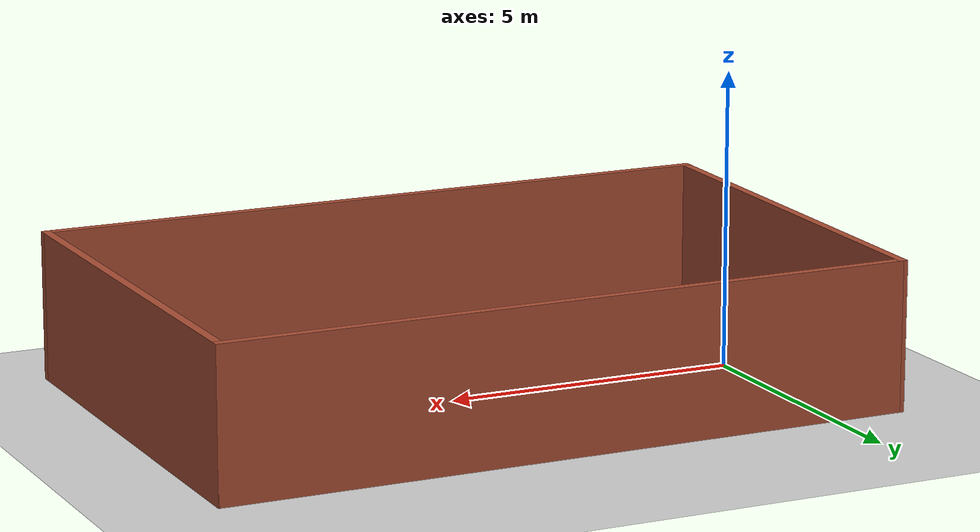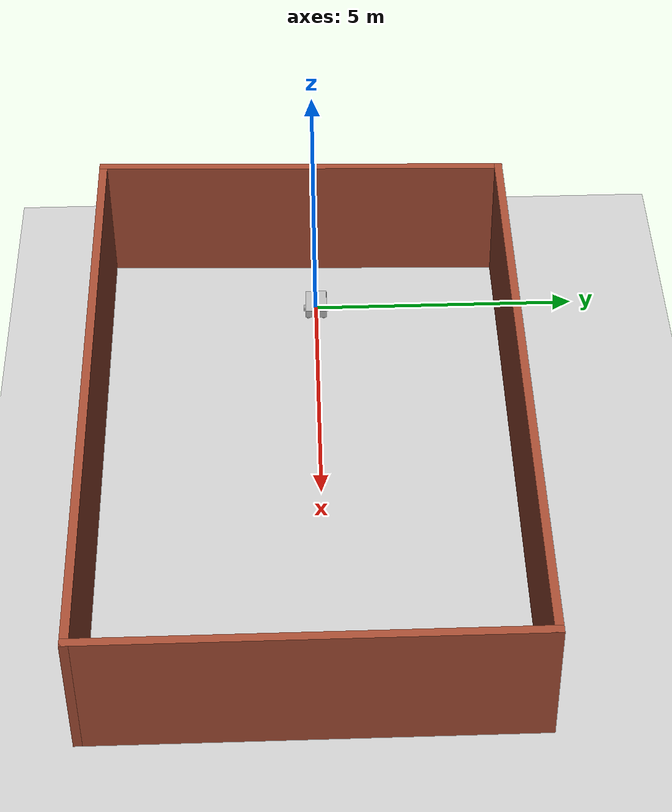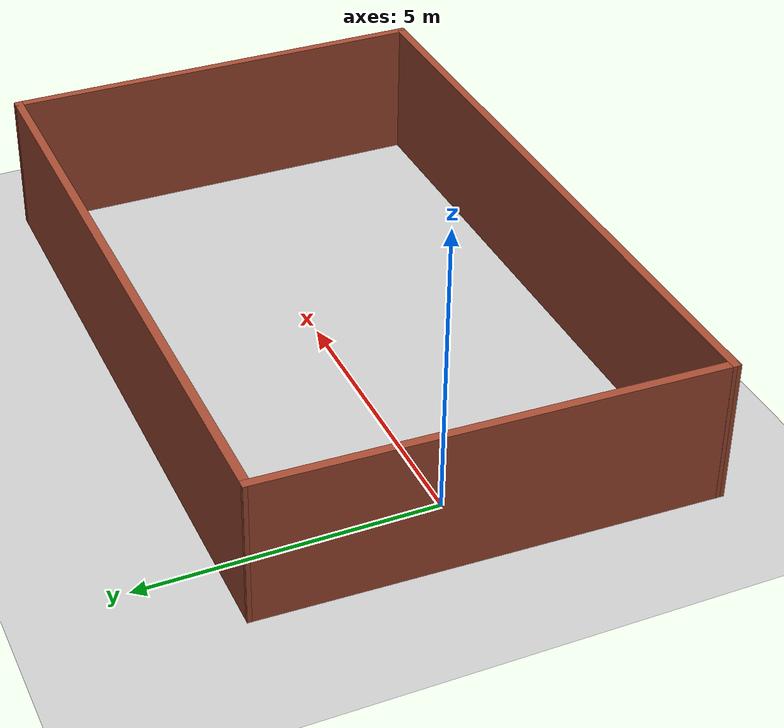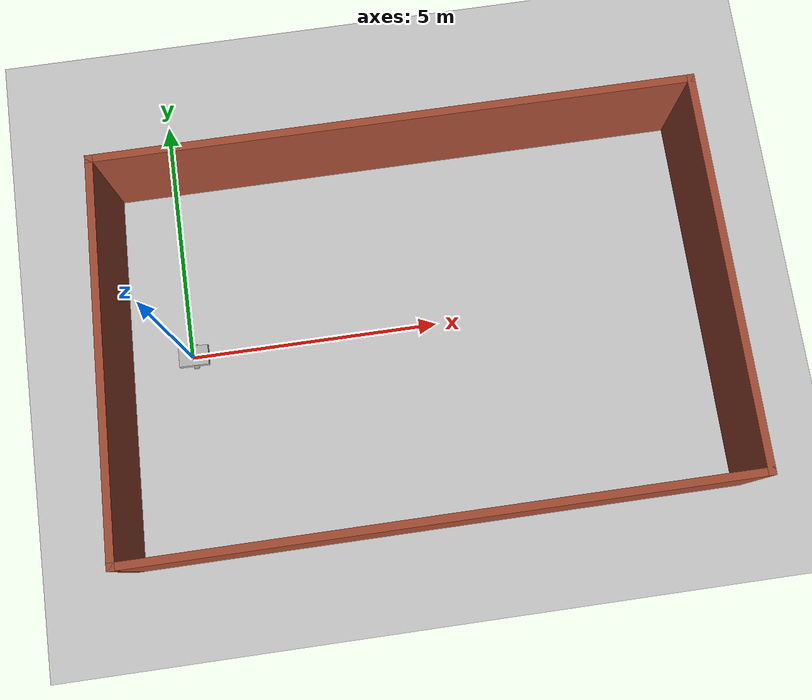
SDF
<sdf version="1.7">
 <world name="default">
  <light name="sun" type="directional">
   <pose>0 0 10 0 -0 0</pose>
   <diffuse>0.8 0.8 0.8 1</diffuse>
   <specular>0.2 0.2 0.2 1</specular>
   <attenuation>
    <range>1000</range>
    <constant>0.9</constant>
    <linear>0.01</linear>
    <quadratic>0.001</quadratic>
   </attenuation>
   <direction>-0.5 0.1 -0.9</direction>
   <spot><inner_angle>0</inner_angle><outer_angle>0</outer_angle><falloff>0</falloff></spot>
  </light>
  <model name="ground_plane">
   <static>1</static>
   <link name="link">
    <collision name="collision">
     <geometry><plane><normal>0 0 1</normal><size>100 100</size></plane></geometry>
     <surface><friction><ode><mu>100</mu><mu2>50</mu2></ode></friction></surface>
    </collision>
    <visual name="visual">
     <cast_shadows>0</cast_shadows>
     <geometry><plane><normal>0 0 1</normal><size>100 100</size></plane></geometry>
     <material>
      <script><uri>file://media/materials/scripts/gazebo.material</uri><name>Gazebo/Grey</name></script>
     </material>
    </visual>
   </link>
  </model>
  <gravity>0 0 -9.8</gravity>
  <magnetic_field>6e-06 2.3e-05 -4.2e-05</magnetic_field>
  <atmosphere type="adiabatic"/>
  <physics type="ode">
   <max_step_size>0.001</max_step_size>
   <real_time_factor>1</real_time_factor>
   <real_time_update_rate>1000</real_time_update_rate>
  </physics>
  <scene><ambient>0.4 0.4 0.4 1</ambient><background>0.7 0.7 0.7 1</background><shadows>1</shadows></scene>
  <audio><device>default</device></audio>
  <spherical_coordinates>
   <surface_model>EARTH_WGS84</surface_model>
   <latitude_deg>0</latitude_deg>
   <longitude_deg>0</longitude_deg>
   <elevation>0</elevation>
   <heading_deg>0</heading_deg>
  </spherical_coordinates>
  <model name="my_bot">
   <link name="base_link">
    <inertial>
     <pose>0.054009 0 0.056651 0 -0 0</pose>
     <mass>1.06</mass>
     <inertia>
      <ixx>0.0231913</ixx>
      <ixy>0</ixy>
      <ixz>0.000588267</ixz>
      <iyy>0.0509701</iyy>
      <iyz>-5.42101e-20</iyz>
      <izz>0.0615121</izz>
     </inertia>
    </inertial>
    <collision name="base_link_fixed_joint_lump__chassis_collision">
     <pose>0.05 0 0.075 0 -0 0</pose>
     <geometry><box><size>0.6 0.4 0.15</size></box></geometry>
    </collision>
    <collision name="base_link_fixed_joint_lump__back_left_caster_collision_1">
     <pose>-0.2 0.15 -0.01 0 -0 0</pose>
     <geometry><sphere><radius>0.05</radius></sphere></geometry>
     <surface><friction><ode><mu>0.0001</mu><mu2>0.0001</mu2></ode></friction></surface>
    </collision>
    <collision name="base_link_fixed_joint_lump__back_right_caster_collision_2">
     <pose>-0.2 -0.15 -0.01 0 -0 0</pose>
     <geometry><sphere><radius>0.05</radius></sphere></geometry>
     <surface><friction><ode><mu>0.0001</mu><mu2>0.0001</mu2></ode></friction></surface>
    </collision>
    <collision name="base_link_fixed_joint_lump__camera_link_collision_3">
     <pose>0.35 0 0.08 0 -0 0</pose>
     <geometry><box><size>0.015 0.13 0.022</size></box></geometry>
    </collision>
    <collision name="base_link_fixed_joint_lump__front_left_caster_collision_4">
     <pose>0.3 0.15 -0.01 0 -0 0</pose>
     <geometry><sphere><radius>0.05</radius></sphere></geometry>
     <surface><friction><ode><mu>0.0001</mu><mu2>0.0001</mu2></ode></friction></surface>
    </collision>
    <collision name="base_link_fixed_joint_lump__front_right_caster_collision_5">
     <pose>0.3 -0.15 -0.01 0 -0 0</pose>
     <geometry><sphere><radius>0.05</radius></sphere></geometry>
     <surface><friction><ode><mu>0.0001</mu><mu2>0.0001</mu2></ode></friction></surface>
    </collision>
    <collision name="base_link_fixed_joint_lump__lidar_link_collision_6">
     <pose>0 0 0.19 0 -0 0</pose>
     <geometry><cylinder><length>0.055</length><radius>0.0508</radius></cylinder></geometry>
    </collision>
    <visual name="base_link_fixed_joint_lump__chassis_visual">
     <pose>0.05 0 0.075 0 -0 0</pose>
     <geometry><box><size>0.6 0.4 0.15</size></box></geometry>
    </visual>
    <visual name="base_link_fixed_joint_lump__back_left_caster_visual_1">
     <pose>-0.2 0.15 -0.01 0 -0 0</pose>
     <geometry><sphere><radius>0.05</radius></sphere></geometry>
    </visual>
    <visual name="base_link_fixed_joint_lump__back_right_caster_visual_2">
     <pose>-0.2 -0.15 -0.01 0 -0 0</pose>
     <geometry><sphere><radius>0.05</radius></sphere></geometry>
    </visual>
    <visual name="base_link_fixed_joint_lump__camera_link_visual_3">
     <pose>0.35 0 0.08 0 -0 0</pose>
     <geometry><box><size>0.015 0.13 0.022</size></box></geometry>
    </visual>
    <visual name="base_link_fixed_joint_lump__front_left_caster_visual_4">
     <pose>0.3 0.15 -0.01 0 -0 0</pose>
     <geometry><sphere><radius>0.05</radius></sphere></geometry>
    </visual>
    <visual name="base_link_fixed_joint_lump__front_right_caster_visual_5">
     <pose>0.3 -0.15 -0.01 0 -0 0</pose>
     <geometry><sphere><radius>0.05</radius></sphere></geometry>
    </visual>
    <visual name="base_link_fixed_joint_lump__lidar_link_visual_6">
     <pose>0 0 0.19 0 -0 0</pose>
     <geometry><cylinder><length>0.055</length><radius>0.0508</radius></cylinder></geometry>
    </visual>
    <sensor name="depth_camera" type="depth">
     <visualize>1</visualize>
     <update_rate>30</update_rate>
     <camera name="camera">
      <horizontal_fov>1.0472</horizontal_fov>
      <image><width>640</width><height>480</height><format>R8G8B8</format></image>
      <clip><near>0.05</near><far>3</far></clip>
     </camera>
     <plugin name="depth_camera_controller" filename="libgazebo_ros_camera.so">
      <baseline>0.2</baseline>
      <alwaysOn>1</alwaysOn>
      <updateRate>0.0</updateRate>
      <frame_name>camera_depth_frame</frame_name>
      <pointCloudCutoff>0.5</pointCloudCutoff>
      <pointCloudCutoffMax>3.0</pointCloudCutoffMax>
      <distortionK1>0</distortionK1>
      <distortionK2>0</distortionK2>
      <distortionK3>0</distortionK3>
      <distortionT1>0</distortionT1>
      <distortionT2>0</distortionT2>
      <CxPrime>0</CxPrime>
      <Cx>0</Cx>
      <Cy>0</Cy>
      <focalLength>0</focalLength>
      <hackBaseline>0</hackBaseline>
     </plugin>
     <pose>0.35 0 0.08 0 -0 0</pose>
    </sensor>
    <sensor name="lidar" type="ray">
     <always_on>1</always_on>
     <visualize>1</visualize>
     <update_rate>5</update_rate>
     <ray>
      <scan>
       <horizontal>
        <samples>360</samples>
        <resolution>1</resolution>
        <min_angle>0</min_angle>
        <max_angle>6.28</max_angle>
       </horizontal>
       <vertical><samples>1</samples><min_angle>0</min_angle><max_angle>0</max_angle></vertical>
      </scan>
      <range><min>0.12</min><max>3.5</max><resolution>0.015</resolution></range>
      <noise><type>gaussian</type><mean>0</mean><stddev>0.01</stddev></noise>
     </ray>
     <plugin name="scan" filename="libgazebo_ros_ray_sensor.so">
      <ros><remapping>~/out:=scan</remapping></ros>
      <output_type>sensor_msgs/LaserScan</output_type>
      <frame_name>lidar_link</frame_name>
     </plugin>
     <pose>0 0 0.19 0 -0 0</pose>
    </sensor>
   </link>
   <joint name="left_wheel_joint" type="revolute">
    <pose relative_to="base_link">0.08 0.22 0 -1.5708 0 0</pose>
    <parent>base_link</parent>
    <child>left_wheel</child>
    <axis>
     <xyz>0 0 1</xyz>
     <limit><lower>-1e+16</lower><upper>1e+16</upper></limit>
     <dynamics><spring_reference>0</spring_reference><spring_stiffness>0</spring_stiffness></dynamics>
    </axis>
   </joint>
   <link name="left_wheel">
    <pose relative_to="left_wheel_joint">0 0 0 0 -0 0</pose>
    <inertial>
     <mass>0.1</mass>
     <inertia>
      <ixx>0.000103333</ixx>
      <ixy>0</ixy>
      <ixz>0</ixz>
      <iyy>0.000103333</iyy>
      <iyz>0</iyz>
      <izz>0.00018</izz>
     </inertia>
    </inertial>
    <collision name="left_wheel_collision">
     <geometry><cylinder><length>0.04</length><radius>0.06</radius></cylinder></geometry>
    </collision>
    <visual name="left_wheel_visual">
     <geometry><cylinder><length>0.04</length><radius>0.06</radius></cylinder></geometry>
    </visual>
   </link>
   <joint name="right_wheel_joint" type="revolute">
    <pose relative_to="base_link">0.08 -0.22 0 1.5708 -0 0</pose>
    <parent>base_link</parent>
    <child>right_wheel</child>
    <axis>
     <xyz>0 0 -1</xyz>
     <limit><lower>-1e+16</lower><upper>1e+16</upper></limit>
     <dynamics><spring_reference>0</spring_reference><spring_stiffness>0</spring_stiffness></dynamics>
    </axis>
   </joint>
   <link name="right_wheel">
    <pose relative_to="right_wheel_joint">0 0 0 0 -0 0</pose>
    <inertial>
     <mass>0.1</mass>
     <inertia>
      <ixx>0.000103333</ixx>
      <ixy>0</ixy>
      <ixz>0</ixz>
      <iyy>0.000103333</iyy>
      <iyz>0</iyz>
      <izz>0.00018</izz>
     </inertia>
    </inertial>
    <collision name="right_wheel_collision">
     <geometry><cylinder><length>0.04</length><radius>0.06</radius></cylinder></geometry>
    </collision>
    <visual name="right_wheel_visual">
     <geometry><cylinder><length>0.04</length><radius>0.06</radius></cylinder></geometry>
    </visual>
   </link>
   <static>0</static>
   <plugin name="gazebo_ros2_control" filename="libgazebo_ros2_control.so">
    <parameters>/home/sam/colcon_ws/install/sam_bot_description/share/sam_bot_description/config/my_controllers.yaml</parameters>
   </plugin>
   <pose>-0.008981 0.008354 0.059996 2.5e-05 -0 -0.022273</pose>
  </model>
  <model name="ika_deneme_1">
   <pose>4.50009 -0.225048 0 0 -0 0</pose>
   <link name="Wall_5">
    <collision name="Wall_5_Collision">
     <geometry><box><size>11.75 0.15 2.5</size></box></geometry>
     <pose>0 0 1.25 0 -0 0</pose>
    </collision>
    <visual name="Wall_5_Visual">
     <pose>0 0 1.25 0 -0 0</pose>
     <geometry><box><size>11.75 0.15 2.5</size></box></geometry>
     <material>
      <script><uri>file://media/materials/scripts/gazebo.material</uri><name>Gazebo/Bricks</name></script>
      <ambient>1 1 1 1</ambient>
     </material>
     <meta><layer>0</layer></meta>
    </visual>
    <pose>0.126212 3.8 0 0 -0 0</pose>
   </link>
   <link name="Wall_6">
    <collision name="Wall_6_Collision">
     <geometry><box><size>7.75 0.15 2.5</size></box></geometry>
     <pose>0 0 1.25 0 -0 0</pose>
    </collision>
    <visual name="Wall_6_Visual">
     <pose>0 0 1.25 0 -0 0</pose>
     <geometry><box><size>7.75 0.15 2.5</size></box></geometry>
     <material>
      <script><uri>file://media/materials/scripts/gazebo.material</uri><name>Gazebo/Bricks</name></script>
      <ambient>1 1 1 1</ambient>
     </material>
     <meta><layer>0</layer></meta>
    </visual>
    <pose>5.92621 -0 0 0 -0 -1.5708</pose>
   </link>
   <link name="Wall_7">
    <collision name="Wall_7_Collision">
     <geometry><box><size>12 0.15 2.5</size></box></geometry>
     <pose>0 0 1.25 0 -0 0</pose>
    </collision>
    <visual name="Wall_7_Visual">
     <pose>0 0 1.25 0 -0 0</pose>
     <geometry><box><size>12 0.15 2.5</size></box></geometry>
     <material>
      <script><uri>file://media/materials/scripts/gazebo.material</uri><name>Gazebo/Bricks</name></script>
      <ambient>1 1 1 1</ambient>
     </material>
     <meta><layer>0</layer></meta>
    </visual>
    <pose>0.001212 -3.8 0 0 -0 3.14159</pose>
   </link>
   <link name="Wall_8">
    <collision name="Wall_8_Collision">
     <geometry><box><size>7.75411 0.15 2.5</size></box></geometry>
     <pose>0 0 1.25 0 -0 0</pose>
    </collision>
    <visual name="Wall_8_Visual">
     <pose>0 0 1.25 0 -0 0</pose>
     <geometry><box><size>7.75411 0.15 2.5</size></box></geometry>
     <material>
      <script><uri>file://media/materials/scripts/gazebo.material</uri><name>Gazebo/Bricks</name></script>
      <ambient>1 1 1 1</ambient>
     </material>
     <meta><layer>0</layer></meta>
    </visual>
    <pose>-5.79879 -0 0 0 -0 1.53791</pose>
   </link>
   <static>1</static>
  </model>
 </world>
</sdf>
